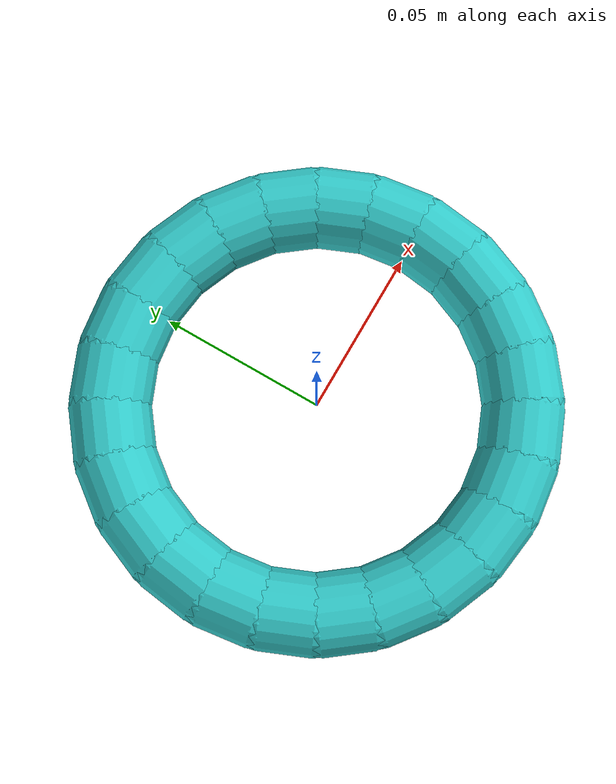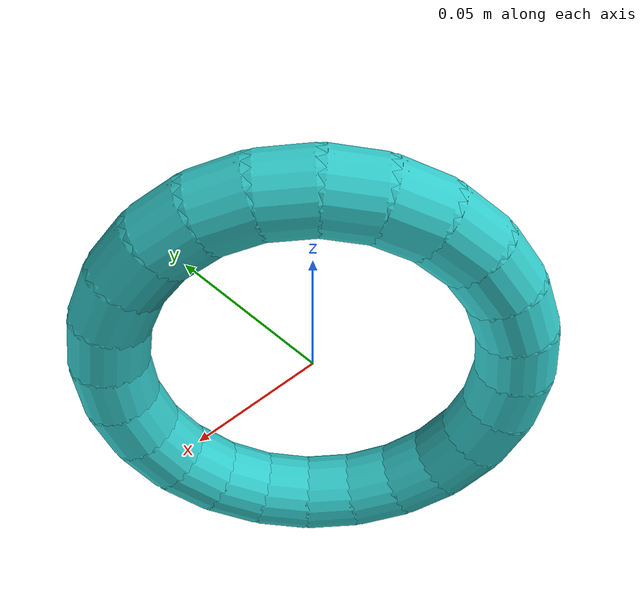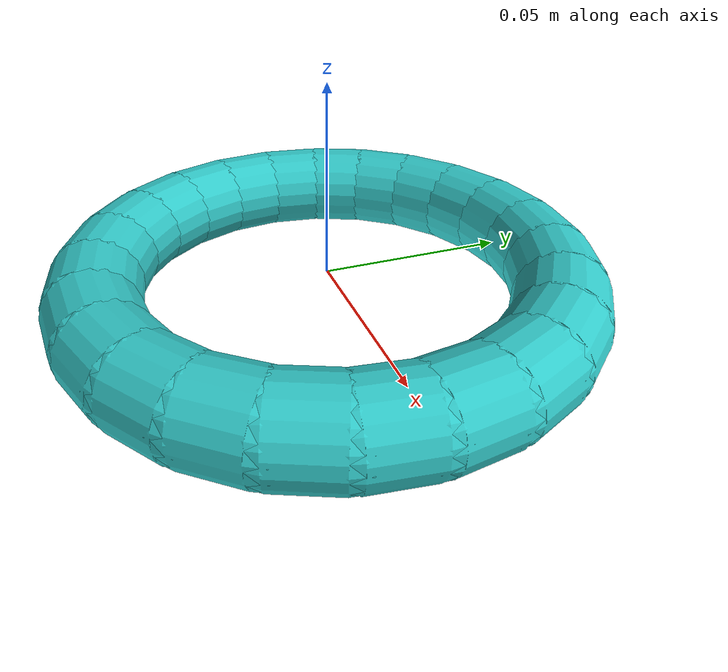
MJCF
<mujoco model="torus_ring_size4">
  <worldbody>
    <body>
      <body name="object">
        <!-- 组合几何体生成圆环 -->
        <geom name="ring_seg_0" type="capsule" fromto="0.06 0.0 0 0.0579555495773441 0.015529142706151244 0" size="0.011" rgba="0.2 0.8 0.8 1" density="50" friction="1.0 0.05 0.05" condim="6" solref="0.001 1" solimp="0.95 0.99 0.001" group="0"/>
        <geom name="ring_seg_vis_0" type="capsule" fromto="0.06 0.0 0 0.0579555495773441 0.015529142706151244 0" size="0.012" rgba="0.2 0.8 0.8 1" contype="0" conaffinity="0" group="1"/>
        <geom name="ring_seg_1" type="capsule" fromto="0.0579555495773441 0.015529142706151244 0 0.05196152422706632 0.029999999999999995 0" size="0.011" rgba="0.2 0.8 0.8 1" density="50" friction="1.0 0.05 0.05" condim="6" solref="0.001 1" solimp="0.95 0.99 0.001" group="0"/>
        <geom name="ring_seg_vis_1" type="capsule" fromto="0.0579555495773441 0.015529142706151244 0 0.05196152422706632 0.029999999999999995 0" size="0.012" rgba="0.2 0.8 0.8 1" contype="0" conaffinity="0" group="1"/>
        <geom name="ring_seg_2" type="capsule" fromto="0.05196152422706632 0.029999999999999995 0 0.042426406871192854 0.04242640687119285 0" size="0.011" rgba="0.2 0.8 0.8 1" density="50" friction="1.0 0.05 0.05" condim="6" solref="0.001 1" solimp="0.95 0.99 0.001" group="0"/>
        <geom name="ring_seg_vis_2" type="capsule" fromto="0.05196152422706632 0.029999999999999995 0 0.042426406871192854 0.04242640687119285 0" size="0.012" rgba="0.2 0.8 0.8 1" contype="0" conaffinity="0" group="1"/>
        <geom name="ring_seg_3" type="capsule" fromto="0.042426406871192854 0.04242640687119285 0 0.030000000000000006 0.05196152422706631 0" size="0.011" rgba="0.2 0.8 0.8 1" density="50" friction="1.0 0.05 0.05" condim="6" solref="0.001 1" solimp="0.95 0.99 0.001" group="0"/>
        <geom name="ring_seg_vis_3" type="capsule" fromto="0.042426406871192854 0.04242640687119285 0 0.030000000000000006 0.05196152422706631 0" size="0.012" rgba="0.2 0.8 0.8 1" contype="0" conaffinity="0" group="1"/>
        <geom name="ring_seg_4" type="capsule" fromto="0.030000000000000006 0.05196152422706631 0 0.015529142706151244 0.0579555495773441 0" size="0.011" rgba="0.2 0.8 0.8 1" density="50" friction="1.0 0.05 0.05" condim="6" solref="0.001 1" solimp="0.95 0.99 0.001" group="0"/>
        <geom name="ring_seg_vis_4" type="capsule" fromto="0.030000000000000006 0.05196152422706631 0 0.015529142706151244 0.0579555495773441 0" size="0.012" rgba="0.2 0.8 0.8 1" contype="0" conaffinity="0" group="1"/>
        <geom name="ring_seg_5" type="capsule" fromto="0.015529142706151244 0.0579555495773441 0 3.673940397442059e-18 0.06 0" size="0.011" rgba="0.2 0.8 0.8 1" density="50" friction="1.0 0.05 0.05" condim="6" solref="0.001 1" solimp="0.95 0.99 0.001" group="0"/>
        <geom name="ring_seg_vis_5" type="capsule" fromto="0.015529142706151244 0.0579555495773441 0 3.673940397442059e-18 0.06 0" size="0.012" rgba="0.2 0.8 0.8 1" contype="0" conaffinity="0" group="1"/>
        <geom name="ring_seg_6" type="capsule" fromto="3.673940397442059e-18 0.06 0 -0.015529142706151237 0.0579555495773441 0" size="0.011" rgba="0.2 0.8 0.8 1" density="50" friction="1.0 0.05 0.05" condim="6" solref="0.001 1" solimp="0.95 0.99 0.001" group="0"/>
        <geom name="ring_seg_vis_6" type="capsule" fromto="3.673940397442059e-18 0.06 0 -0.015529142706151237 0.0579555495773441 0" size="0.012" rgba="0.2 0.8 0.8 1" contype="0" conaffinity="0" group="1"/>
        <geom name="ring_seg_7" type="capsule" fromto="-0.015529142706151237 0.0579555495773441 0 -0.029999999999999985 0.05196152422706632 0" size="0.011" rgba="0.2 0.8 0.8 1" density="50" friction="1.0 0.05 0.05" condim="6" solref="0.001 1" solimp="0.95 0.99 0.001" group="0"/>
        <geom name="ring_seg_vis_7" type="capsule" fromto="-0.015529142706151237 0.0579555495773441 0 -0.029999999999999985 0.05196152422706632 0" size="0.012" rgba="0.2 0.8 0.8 1" contype="0" conaffinity="0" group="1"/>
        <geom name="ring_seg_8" type="capsule" fromto="-0.029999999999999985 0.05196152422706632 0 -0.04242640687119285 0.042426406871192854 0" size="0.011" rgba="0.2 0.8 0.8 1" density="50" friction="1.0 0.05 0.05" condim="6" solref="0.001 1" solimp="0.95 0.99 0.001" group="0"/>
        <geom name="ring_seg_vis_8" type="capsule" fromto="-0.029999999999999985 0.05196152422706632 0 -0.04242640687119285 0.042426406871192854 0" size="0.012" rgba="0.2 0.8 0.8 1" contype="0" conaffinity="0" group="1"/>
        <geom name="ring_seg_9" type="capsule" fromto="-0.04242640687119285 0.042426406871192854 0 -0.05196152422706632 0.029999999999999995 0" size="0.011" rgba="0.2 0.8 0.8 1" density="50" friction="1.0 0.05 0.05" condim="6" solref="0.001 1" solimp="0.95 0.99 0.001" group="0"/>
        <geom name="ring_seg_vis_9" type="capsule" fromto="-0.04242640687119285 0.042426406871192854 0 -0.05196152422706632 0.029999999999999995 0" size="0.012" rgba="0.2 0.8 0.8 1" contype="0" conaffinity="0" group="1"/>
        <geom name="ring_seg_10" type="capsule" fromto="-0.05196152422706632 0.029999999999999995 0 -0.05795554957734409 0.01552914270615126 0" size="0.011" rgba="0.2 0.8 0.8 1" density="50" friction="1.0 0.05 0.05" condim="6" solref="0.001 1" solimp="0.95 0.99 0.001" group="0"/>
        <geom name="ring_seg_vis_10" type="capsule" fromto="-0.05196152422706632 0.029999999999999995 0 -0.05795554957734409 0.01552914270615126 0" size="0.012" rgba="0.2 0.8 0.8 1" contype="0" conaffinity="0" group="1"/>
        <geom name="ring_seg_11" type="capsule" fromto="-0.05795554957734409 0.01552914270615126 0 -0.06 7.347880794884118e-18 0" size="0.011" rgba="0.2 0.8 0.8 1" density="50" friction="1.0 0.05 0.05" condim="6" solref="0.001 1" solimp="0.95 0.99 0.001" group="0"/>
        <geom name="ring_seg_vis_11" type="capsule" fromto="-0.05795554957734409 0.01552914270615126 0 -0.06 7.347880794884118e-18 0" size="0.012" rgba="0.2 0.8 0.8 1" contype="0" conaffinity="0" group="1"/>
        <geom name="ring_seg_12" type="capsule" fromto="-0.06 7.347880794884118e-18 0 -0.0579555495773441 -0.015529142706151248 0" size="0.011" rgba="0.2 0.8 0.8 1" density="50" friction="1.0 0.05 0.05" condim="6" solref="0.001 1" solimp="0.95 0.99 0.001" group="0"/>
        <geom name="ring_seg_vis_12" type="capsule" fromto="-0.06 7.347880794884118e-18 0 -0.0579555495773441 -0.015529142706151248 0" size="0.012" rgba="0.2 0.8 0.8 1" contype="0" conaffinity="0" group="1"/>
        <geom name="ring_seg_13" type="capsule" fromto="-0.0579555495773441 -0.015529142706151248 0 -0.051961524227066326 -0.02999999999999998 0" size="0.011" rgba="0.2 0.8 0.8 1" density="50" friction="1.0 0.05 0.05" condim="6" solref="0.001 1" solimp="0.95 0.99 0.001" group="0"/>
        <geom name="ring_seg_vis_13" type="capsule" fromto="-0.0579555495773441 -0.015529142706151248 0 -0.051961524227066326 -0.02999999999999998 0" size="0.012" rgba="0.2 0.8 0.8 1" contype="0" conaffinity="0" group="1"/>
        <geom name="ring_seg_14" type="capsule" fromto="-0.051961524227066326 -0.02999999999999998 0 -0.042426406871192875 -0.042426406871192826 0" size="0.011" rgba="0.2 0.8 0.8 1" density="50" friction="1.0 0.05 0.05" condim="6" solref="0.001 1" solimp="0.95 0.99 0.001" group="0"/>
        <geom name="ring_seg_vis_14" type="capsule" fromto="-0.051961524227066326 -0.02999999999999998 0 -0.042426406871192875 -0.042426406871192826 0" size="0.012" rgba="0.2 0.8 0.8 1" contype="0" conaffinity="0" group="1"/>
        <geom name="ring_seg_15" type="capsule" fromto="-0.042426406871192875 -0.042426406871192826 0 -0.030000000000000027 -0.0519615242270663 0" size="0.011" rgba="0.2 0.8 0.8 1" density="50" friction="1.0 0.05 0.05" condim="6" solref="0.001 1" solimp="0.95 0.99 0.001" group="0"/>
        <geom name="ring_seg_vis_15" type="capsule" fromto="-0.042426406871192875 -0.042426406871192826 0 -0.030000000000000027 -0.0519615242270663 0" size="0.012" rgba="0.2 0.8 0.8 1" contype="0" conaffinity="0" group="1"/>
        <geom name="ring_seg_16" type="capsule" fromto="-0.030000000000000027 -0.0519615242270663 0 -0.015529142706151237 -0.0579555495773441 0" size="0.011" rgba="0.2 0.8 0.8 1" density="50" friction="1.0 0.05 0.05" condim="6" solref="0.001 1" solimp="0.95 0.99 0.001" group="0"/>
        <geom name="ring_seg_vis_16" type="capsule" fromto="-0.030000000000000027 -0.0519615242270663 0 -0.015529142706151237 -0.0579555495773441 0" size="0.012" rgba="0.2 0.8 0.8 1" contype="0" conaffinity="0" group="1"/>
        <geom name="ring_seg_17" type="capsule" fromto="-0.015529142706151237 -0.0579555495773441 0 -1.1021821192326178e-17 -0.06 0" size="0.011" rgba="0.2 0.8 0.8 1" density="50" friction="1.0 0.05 0.05" condim="6" solref="0.001 1" solimp="0.95 0.99 0.001" group="0"/>
        <geom name="ring_seg_vis_17" type="capsule" fromto="-0.015529142706151237 -0.0579555495773441 0 -1.1021821192326178e-17 -0.06 0" size="0.012" rgba="0.2 0.8 0.8 1" contype="0" conaffinity="0" group="1"/>
        <geom name="ring_seg_18" type="capsule" fromto="-1.1021821192326178e-17 -0.06 0 0.015529142706151217 -0.057955549577344105 0" size="0.011" rgba="0.2 0.8 0.8 1" density="50" friction="1.0 0.05 0.05" condim="6" solref="0.001 1" solimp="0.95 0.99 0.001" group="0"/>
        <geom name="ring_seg_vis_18" type="capsule" fromto="-1.1021821192326178e-17 -0.06 0 0.015529142706151217 -0.057955549577344105 0" size="0.012" rgba="0.2 0.8 0.8 1" contype="0" conaffinity="0" group="1"/>
        <geom name="ring_seg_19" type="capsule" fromto="0.015529142706151217 -0.057955549577344105 0 0.030000000000000006 -0.05196152422706631 0" size="0.011" rgba="0.2 0.8 0.8 1" density="50" friction="1.0 0.05 0.05" condim="6" solref="0.001 1" solimp="0.95 0.99 0.001" group="0"/>
        <geom name="ring_seg_vis_19" type="capsule" fromto="0.015529142706151217 -0.057955549577344105 0 0.030000000000000006 -0.05196152422706631 0" size="0.012" rgba="0.2 0.8 0.8 1" contype="0" conaffinity="0" group="1"/>
        <geom name="ring_seg_20" type="capsule" fromto="0.030000000000000006 -0.05196152422706631 0 0.04242640687119284 -0.04242640687119286 0" size="0.011" rgba="0.2 0.8 0.8 1" density="50" friction="1.0 0.05 0.05" condim="6" solref="0.001 1" solimp="0.95 0.99 0.001" group="0"/>
        <geom name="ring_seg_vis_20" type="capsule" fromto="0.030000000000000006 -0.05196152422706631 0 0.04242640687119284 -0.04242640687119286 0" size="0.012" rgba="0.2 0.8 0.8 1" contype="0" conaffinity="0" group="1"/>
        <geom name="ring_seg_21" type="capsule" fromto="0.04242640687119284 -0.04242640687119286 0 0.0519615242270663 -0.030000000000000027 0" size="0.011" rgba="0.2 0.8 0.8 1" density="50" friction="1.0 0.05 0.05" condim="6" solref="0.001 1" solimp="0.95 0.99 0.001" group="0"/>
        <geom name="ring_seg_vis_21" type="capsule" fromto="0.04242640687119284 -0.04242640687119286 0 0.0519615242270663 -0.030000000000000027 0" size="0.012" rgba="0.2 0.8 0.8 1" contype="0" conaffinity="0" group="1"/>
        <geom name="ring_seg_22" type="capsule" fromto="0.0519615242270663 -0.030000000000000027 0 0.057955549577344084 -0.015529142706151293 0" size="0.011" rgba="0.2 0.8 0.8 1" density="50" friction="1.0 0.05 0.05" condim="6" solref="0.001 1" solimp="0.95 0.99 0.001" group="0"/>
        <geom name="ring_seg_vis_22" type="capsule" fromto="0.0519615242270663 -0.030000000000000027 0 0.057955549577344084 -0.015529142706151293 0" size="0.012" rgba="0.2 0.8 0.8 1" contype="0" conaffinity="0" group="1"/>
        <geom name="ring_seg_23" type="capsule" fromto="0.057955549577344084 -0.015529142706151293 0 0.06 0.0 0" size="0.011" rgba="0.2 0.8 0.8 1" density="50" friction="1.0 0.05 0.05" condim="6" solref="0.001 1" solimp="0.95 0.99 0.001" group="0"/>
        <geom name="ring_seg_vis_23" type="capsule" fromto="0.057955549577344084 -0.015529142706151293 0 0.06 0.0 0" size="0.012" rgba="0.2 0.8 0.8 1" contype="0" conaffinity="0" group="1"/>
      </body>
    </body>
  </worldbody>
</mujoco>
